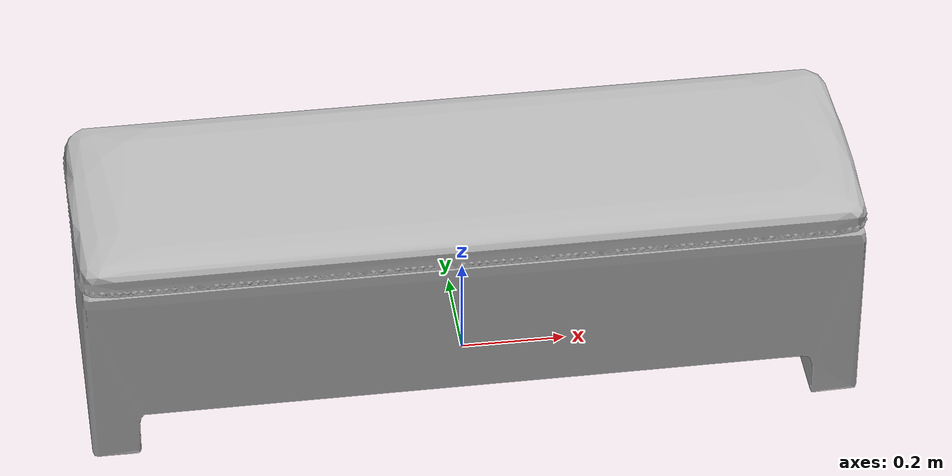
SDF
<sdf version="1.6">
	<model name="StorageBenches_O467899d066b8_lod0">
		<link name="main_link">
			<visual name="visual_RootNode">
				<geometry>
					<mesh>
						<uri>model://StorageBenches_O467899d066b8_lod0/meshes/visual_RootNode.dae</uri>
					</mesh>
				</geometry>
			</visual>
			<collision name="collision_RootNode_lod0_0">
				<geometry>
					<mesh>
						<uri>model://StorageBenches_O467899d066b8_lod0/meshes/collision_RootNode_lod0_0.dae</uri>
					</mesh>
				</geometry>
			</collision>
		</link>
	</model>
</sdf>
